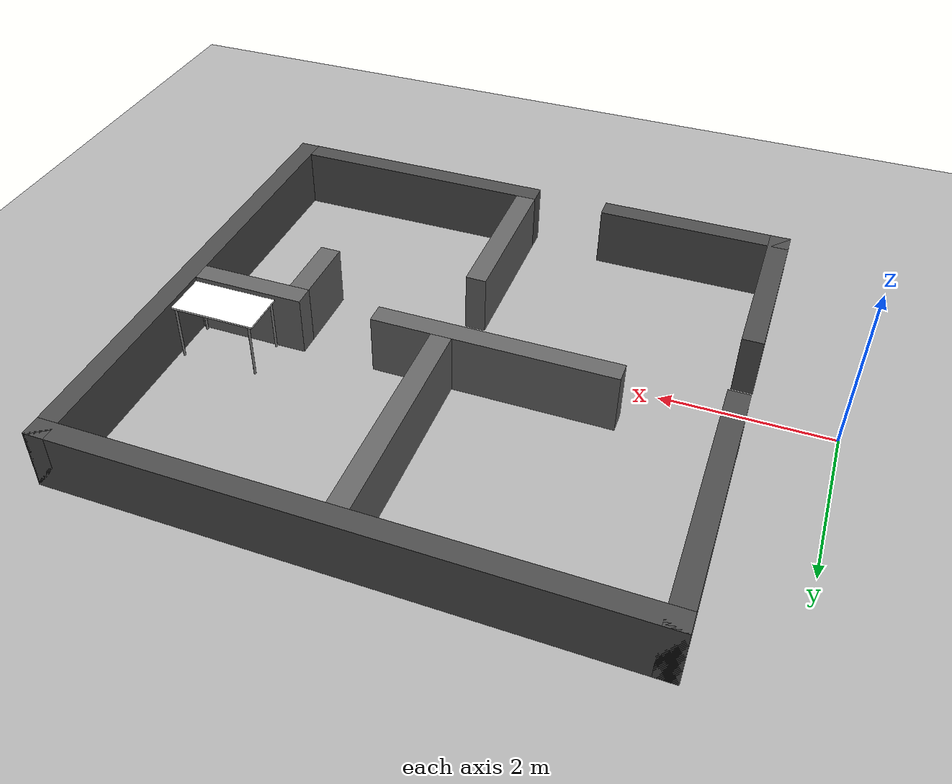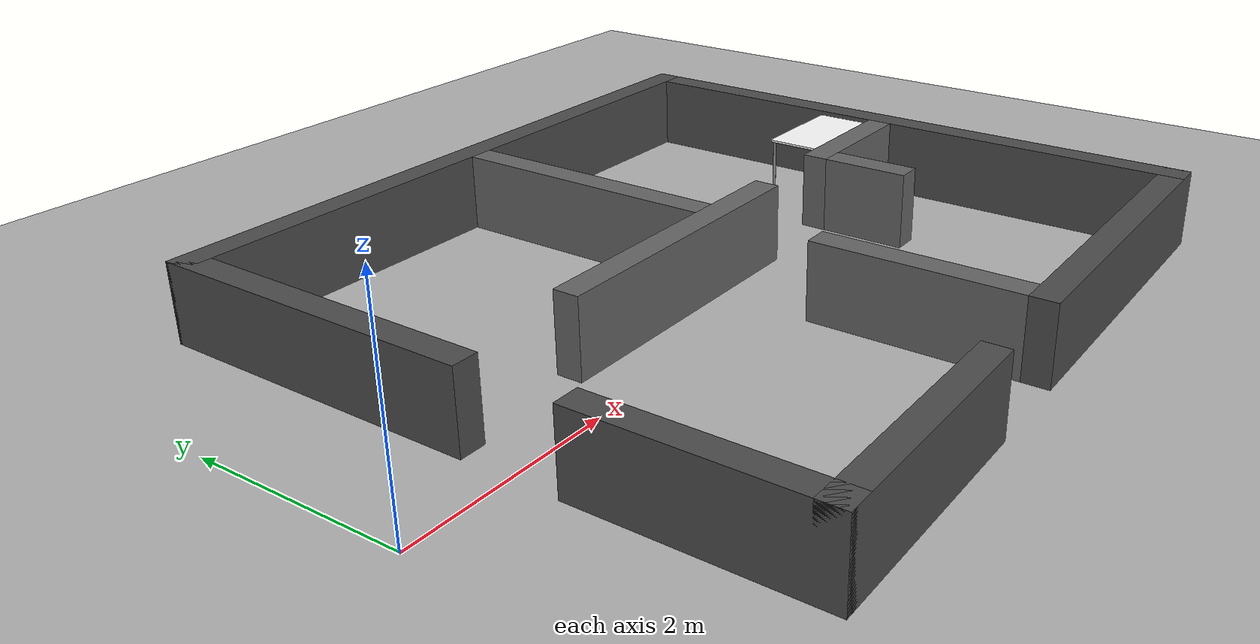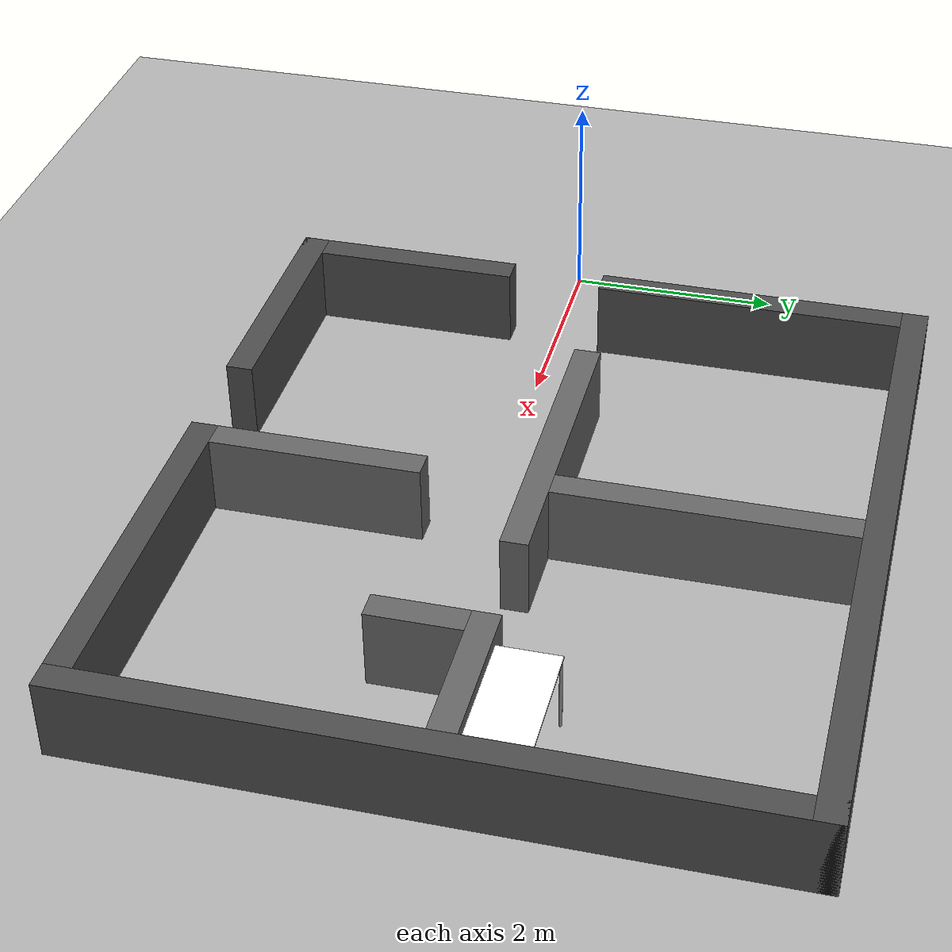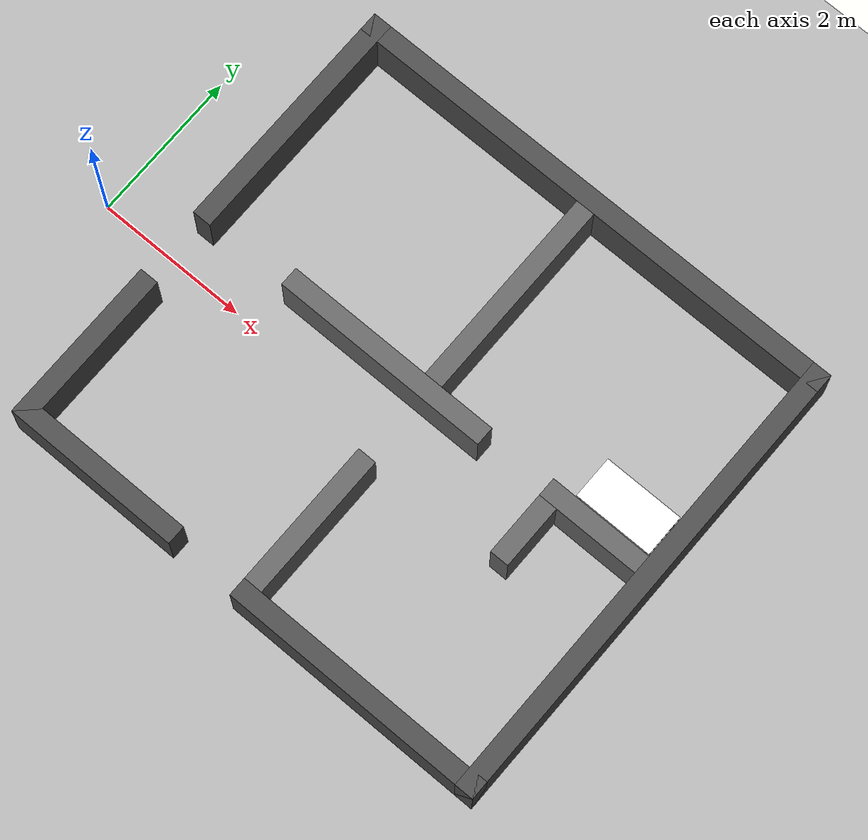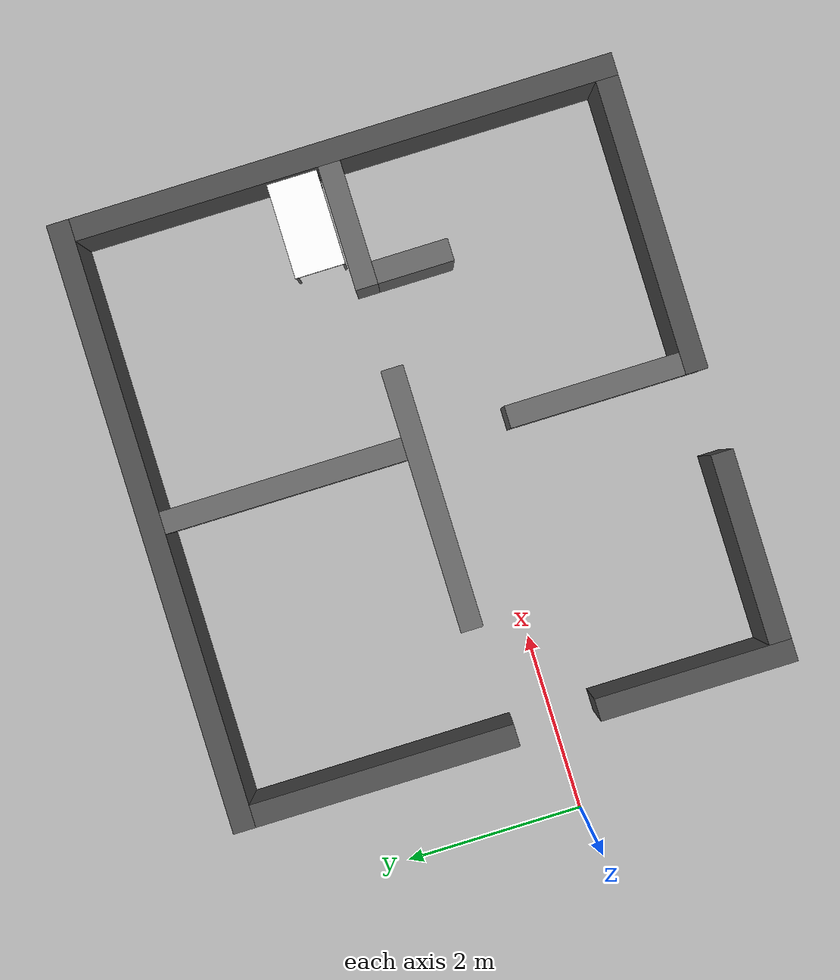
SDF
<sdf version="1.8">
 <world name="restaurant_world">
  <plugin filename="gz-sim-physics-system" name="gz::sim::systems::Physics"/>
  <plugin filename="gz-sim-user-commands-system" name="gz::sim::systems::UserCommands"/>
  <plugin filename="gz-sim-imu-system" name="gz::sim::systems::Imu"/>
  <plugin filename="gz-sim-scene-broadcaster-system" name="gz::sim::systems::SceneBroadcaster"/>
  <plugin filename="gz-sim-sensors-system" name="gz::sim::systems::Sensors">
   <render_engine>ogre2</render_engine>
  </plugin>
  <light type="directional" name="sun">
   <pose>0 0 10 0 0 0</pose>
   <diffuse>0.8 0.8 0.8 1</diffuse>
   <specular>0.2 0.2 0.2 1</specular>
   <direction>-0.5 0.1 -0.9</direction>
  </light>
  <model name="ground_plane">
   <static>true</static>
   <link name="link">
    <collision name="collision">
     <geometry><plane><normal>0 0 1</normal><size>100 100</size></plane></geometry>
    </collision>
    <visual name="visual">
     <geometry><plane><normal>0 0 1</normal><size>100 100</size></plane></geometry>
     <material><ambient>0.7 0.7 0.7 1</ambient><diffuse>0.7 0.7 0.7 1</diffuse></material>
    </visual>
   </link>
  </model>
  <model name="restaurant">
   <static>true</static>
   <link name="wall_outer_top">
    <pose>4.395 3.525 0.375 0 0 0</pose>
    <collision name="collision"><geometry><box><size>6.79 0.25 0.75</size></box></geometry></collision>
    <visual name="visual">
     <geometry><box><size>6.79 0.25 0.75</size></box></geometry>
     <material><ambient>0.3 0.3 0.3 1</ambient><diffuse>0.3 0.3 0.3 1</diffuse></material>
    </visual>
   </link>
   <link name="wall_outer_right">
    <pose>7.665 0.50 0.375 0 0 0</pose>
    <collision name="collision"><geometry><box><size>0.25 6.30 0.75</size></box></geometry></collision>
    <visual name="visual">
     <geometry><box><size>0.25 6.30 0.75</size></box></geometry>
     <material><ambient>0.3 0.3 0.3 1</ambient><diffuse>0.3 0.3 0.3 1</diffuse></material>
    </visual>
   </link>
   <link name="wall_outer_left_top">
    <pose>1.125 2.05 0.375 0 0 0</pose>
    <collision name="collision"><geometry><box><size>0.25 3.20 0.75</size></box></geometry></collision>
    <visual name="visual">
     <geometry><box><size>0.25 3.20 0.75</size></box></geometry>
     <material><ambient>0.3 0.3 0.3 1</ambient><diffuse>0.3 0.3 0.3 1</diffuse></material>
    </visual>
   </link>
   <link name="wall_outer_left_bottom">
    <pose>1.125 -1.55 0.375 0 0 0</pose>
    <collision name="collision"><geometry><box><size>0.25 2.20 0.75</size></box></geometry></collision>
    <visual name="visual">
     <geometry><box><size>0.25 2.20 0.75</size></box></geometry>
     <material><ambient>0.3 0.3 0.3 1</ambient><diffuse>0.3 0.3 0.3 1</diffuse></material>
    </visual>
   </link>
   <link name="wall_outer_bottom_left">
    <pose>2.185 -2.525 0.375 0 0 0</pose>
    <collision name="collision"><geometry><box><size>2.37 0.25 0.75</size></box></geometry></collision>
    <visual name="visual">
     <geometry><box><size>2.37 0.25 0.75</size></box></geometry>
     <material><ambient>0.3 0.3 0.3 1</ambient><diffuse>0.3 0.3 0.3 1</diffuse></material>
    </visual>
   </link>
   <link name="wall_outer_bottom_right">
    <pose>6.03 -2.525 0.375 0 0 0</pose>
    <collision name="collision"><geometry><box><size>3.52 0.25 0.75</size></box></geometry></collision>
    <visual name="visual">
     <geometry><box><size>3.52 0.25 0.75</size></box></geometry>
     <material><ambient>0.3 0.3 0.3 1</ambient><diffuse>0.3 0.3 0.3 1</diffuse></material>
    </visual>
   </link>
   <link name="inner_wall_center_top">
    <pose>4.395 2.05 0.375 0 0 0</pose>
    <collision name="collision"><geometry><box><size>0.25 2.70 0.75</size></box></geometry></collision>
    <visual name="visual">
     <geometry><box><size>0.25 2.70 0.75</size></box></geometry>
     <material><ambient>0.4 0.4 0.4 1</ambient><diffuse>0.4 0.4 0.4 1</diffuse></material>
    </visual>
   </link>
   <link name="inner_wall_center_bottom">
    <pose>4.395 -1.425 0.375 0 0 0</pose>
    <collision name="collision"><geometry><box><size>0.25 1.95 0.75</size></box></geometry></collision>
    <visual name="visual">
     <geometry><box><size>0.25 1.95 0.75</size></box></geometry>
     <material><ambient>0.4 0.4 0.4 1</ambient><diffuse>0.4 0.4 0.4 1</diffuse></material>
    </visual>
   </link>
   <link name="inner_wall_bed_bottom">
    <pose>3.8 0.575 0.375 0 0 0</pose>
    <collision name="collision"><geometry><box><size>2.92 0.25 0.75</size></box></geometry></collision>
    <visual name="visual">
     <geometry><box><size>2.92 0.25 0.75</size></box></geometry>
     <material><ambient>0.4 0.4 0.4 1</ambient><diffuse>0.4 0.4 0.4 1</diffuse></material>
    </visual>
   </link>
   <link name="inner_wall_right_horizontal">
    <pose>6.85 0.575 0.375 0 0 0</pose>
    <collision name="collision"><geometry><box><size>1.38 0.25 0.75</size></box></geometry></collision>
    <visual name="visual">
     <geometry><box><size>1.38 0.25 0.75</size></box></geometry>
     <material><ambient>0.4 0.4 0.4 1</ambient><diffuse>0.4 0.4 0.4 1</diffuse></material>
    </visual>
   </link>
   <link name="inner_wall_desk_nook">
    <pose>6.285 0.025 0.375 0 0 0</pose>
    <collision name="collision"><geometry><box><size>0.25 0.85 0.75</size></box></geometry></collision>
    <visual name="visual">
     <geometry><box><size>0.25 0.85 0.75</size></box></geometry>
     <material><ambient>0.4 0.4 0.4 1</ambient><diffuse>0.4 0.4 0.4 1</diffuse></material>
    </visual>
   </link>
  </model>
  <include><uri>model://table</uri><name>dining_table</name><pose>7.0 1.0 0 0 0 0</pose></include>
 </world>
</sdf>

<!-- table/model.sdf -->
<sdf version="1.8">
    <model name="Table">
        <link name="link">
            <!-- Table Top Surface -->
            <collision name="surface">
                <pose>0 0 0.7 0 0 0</pose>
                <geometry>
                    <box>
                        <size>1.05 0.56 0.021</size>
                    </box>
                </geometry>
                <surface>
                    <friction>
                        <ode>
                            <mu>0.6</mu>
                            <mu2>0.6</mu2>
                        </ode>
                    </friction>
                </surface>
            </collision>
            <visual name="visual1">
                <pose>0 0 0.7 0 0 0</pose>
                <geometry>
                    <box>
                        <size>1.05 0.56 0.021</size>
                    </box>
                </geometry>
                <material>
                    <diffuse>1.0 1.0 1.0 1.0</diffuse>
                    <pbr>
                        <metal>
                            <albedo_map>https://fuel.gazebosim.org/1.0/openrobotics/models/table/4/files/Table_Diffuse.jpg</albedo_map>
                        </metal>
                    </pbr>
                </material>
            </visual>

            <!-- Front Left Leg -->
            <collision name="front_left_leg">
                <pose>0.476 0.266 0.35 0 0 0</pose>
                <geometry>
                    <cylinder>
                        <radius>0.014</radius>
                        <length>0.7</length>
                    </cylinder>
                </geometry>
            </collision>
            <visual name="front_left_leg">
                <pose>0.476 0.266 0.35 0 0 0</pose>
                <geometry>
                    <cylinder>
                        <radius>0.014</radius>
                        <length>0.7</length>
                    </cylinder>
                </geometry>
                <material>
                    <diffuse>0.5 0.5 0.5 1.0</diffuse>
                </material>
            </visual>

            <!-- Front Right Leg -->
            <collision name="front_right_leg">
                <pose>0.476 -0.266 0.35 0 0 0</pose>
                <geometry>
                    <cylinder>
                        <radius>0.014</radius>
                        <length>0.7</length>
                    </cylinder>
                </geometry>
            </collision>
            <visual name="front_right_leg">
                <pose>0.476 -0.266 0.35 0 0 0</pose>
                <geometry>
                    <cylinder>
                        <radius>0.014</radius>
                        <length>0.7</length>
                    </cylinder>
                </geometry>
                <material>
                    <diffuse>0.5 0.5 0.5 1.0</diffuse>
                </material>
            </visual>

            <!-- Back Right Leg -->
            <collision name="back_right_leg">
                <pose>-0.476 -0.266 0.35 0 0 0</pose>
                <geometry>
                    <cylinder>
                        <radius>0.014</radius>
                        <length>0.7</length>
                    </cylinder>
                </geometry>
            </collision>
            <visual name="back_right_leg">
                <pose>-0.476 -0.266 0.35 0 0 0</pose>
                <geometry>
                    <cylinder>
                        <radius>0.014</radius>
                        <length>0.7</length>
                    </cylinder>
                </geometry>
                <material>
                    <diffuse>0.5 0.5 0.5 1.0</diffuse>
                </material>
            </visual>

            <!-- Back Left Leg -->
            <collision name="back_left_leg">
                <pose>-0.476 0.266 0.35 0 0 0</pose>
                <geometry>
                    <cylinder>
                        <radius>0.014</radius>
                        <length>0.7</length>
                    </cylinder>
                </geometry>
            </collision>
            <visual name="back_left_leg">
                <pose>-0.476 0.266 0.35 0 0 0</pose>
                <geometry>
                    <cylinder>
                        <radius>0.014</radius>
                        <length>0.7</length>
                    </cylinder>
                </geometry>
                <material>
                    <diffuse>0.5 0.5 0.5 1.0</diffuse>
                </material>
            </visual>
        </link>
    </model>
</sdf>
